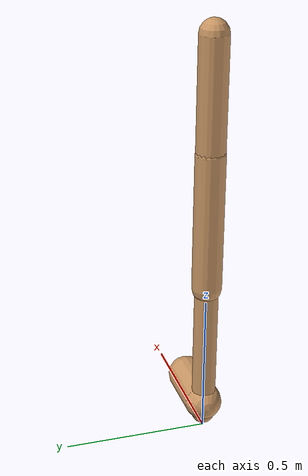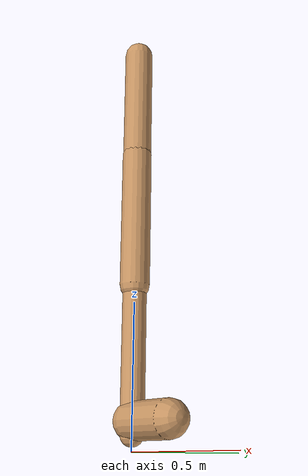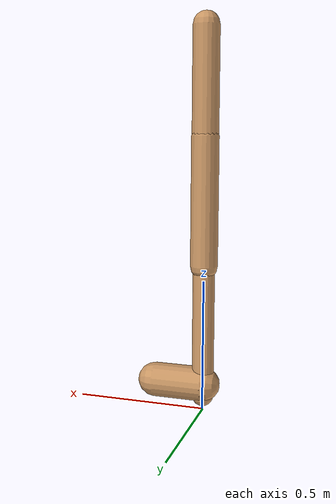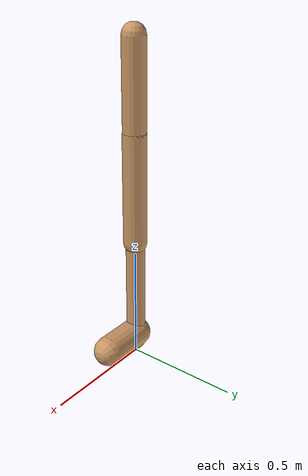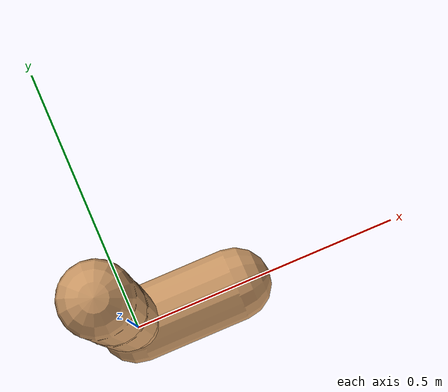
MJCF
<mujoco model="walker2d">
  <compiler angle="degree" coordinate="global" inertiafromgeom="true" />
  <default>
    <joint armature="0.01" damping=".1" limited="true" />
    <geom conaffinity="0" condim="3" contype="1" density="1000" friction="0.8 .1 .1" rgba="0.8 0.6 .4 1" />
  </default>
  <option integrator="RK4" timestep="0.002" />
  <worldbody>

    <body name="torso" pos="0 0 0.08368110944873257">
      <joint armature="0" axis="1 0 0" damping="0" limited="false" name="ignorex" pos="0 0 0" stiffness="0" type="slide" />
      <joint armature="0" axis="0 0 1" damping="0" limited="false" name="ignorez" pos="0 0 0" ref="1.25" stiffness="0" type="slide" />
      <joint armature="0" axis="0 1 0" damping="0" limited="false" name="ignorey" pos="0 0 0" stiffness="0" type="hinge" />
      <geom fromto="0 0 1.45 0 0 1.05" name="torso_geom" size="0.05016729858044479" type="capsule" />
      <body name="thigh">
        <joint axis="0 -1 0" name="thigh_joint" pos="0 0 1.05" range="-150 0" type="hinge" />
        <geom fromto="0.0 0.0 1.05 0.0 0.0 0.5603615797348108" name="thigh_geom" size="0.051751856298646384" type="capsule" />
        <body name="leg" pos="0.0 0.0 -0.039638420265189156">
          <joint axis="0 -1 0" name="leg_joint" pos="0 0 0.6" range="-150 0" type="hinge" />
          <geom fromto="0.0 0.0 0.6 0.0 0.0 0.05595731081645655" name="leg_geom" size="0.04140148503891711" type="capsule" />
          <body name="foot" pos="0.0 0.0 -0.044042689183543454">
            <joint axis="0 -1 0" name="foot_joint" pos="0 0 0.1" range="-45 45" type="hinge" />
            <geom fromto="0.0 0.0 0.1 0.1899867381576121 0.0 0.1" name="foot_geom" size="0.06556464454193721" type="capsule" />
          </body>
        </body>
      </body>

      <body name="thigh_left">
        <joint axis="0 -1 0" name="thigh_left_joint" pos="0 0 1.05" range="-150 0" type="hinge" />
        <geom fromto="0.0 0.0 1.05 0.0 0.0 0.5603615797348108" name="thigh_left_geom" rgba=".7 .3 .6 1" size="0.051751856298646384" type="capsule" />
        <body name="leg_left" pos="0.0 0.0 -0.039638420265189156">
          <joint axis="0 -1 0" name="leg_left_joint" pos="0 0 0.6" range="-150 0" type="hinge" />
          <geom fromto="0.0 0.0 0.6 0.0 0.0 0.05595731081645655" name="leg_left_geom" rgba=".7 .3 .6 1" size="0.04140148503891711" type="capsule" />
          <body name="foot_left" pos="0.0 0.0 -0.044042689183543454">
            <joint axis="0 -1 0" name="foot_left_joint" pos="0 0 0.1" range="-45 45" type="hinge" />
            <geom fromto="0.0 0.0 0.1 0.1899867381576121 0.0 0.1" name="foot_left_geom" rgba=".7 .3 .6 1" size="0.06556464454193721" type="capsule" />
          </body>
        </body>
      </body>
    </body>
  </worldbody>
  <actuator>

    <motor ctrllimited="true" ctrlrange="-1.0 1.0" gear="100" joint="thigh_joint" />
    <motor ctrllimited="true" ctrlrange="-1.0 1.0" gear="100" joint="leg_joint" />
    <motor ctrllimited="true" ctrlrange="-1.0 1.0" gear="100" joint="foot_joint" />
    <motor ctrllimited="true" ctrlrange="-1.0 1.0" gear="100" joint="thigh_left_joint" />
    <motor ctrllimited="true" ctrlrange="-1.0 1.0" gear="100" joint="leg_left_joint" />
    <motor ctrllimited="true" ctrlrange="-1.0 1.0" gear="100" joint="foot_left_joint" />

  </actuator>
</mujoco>
